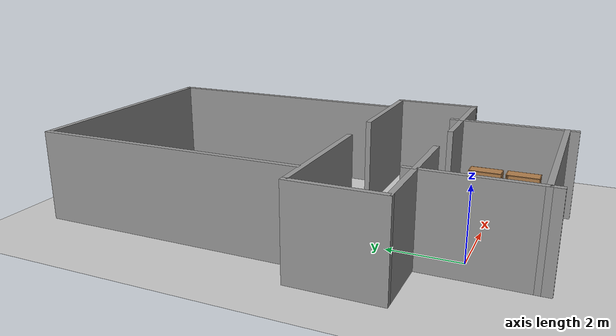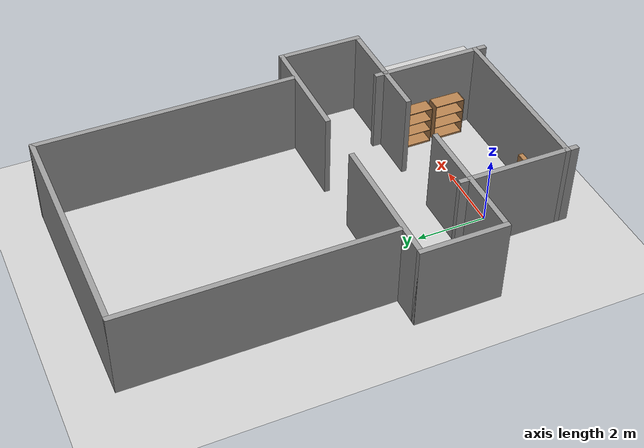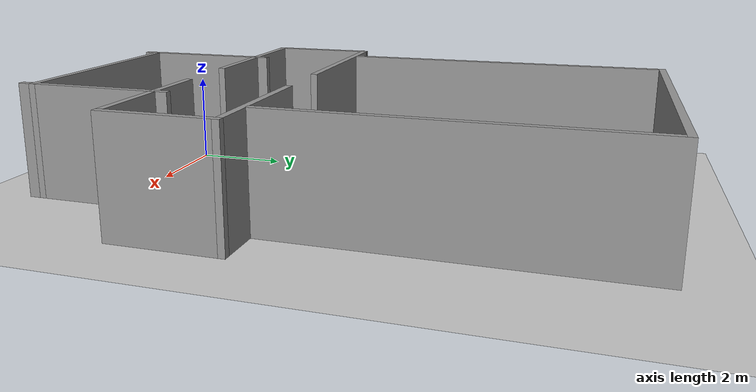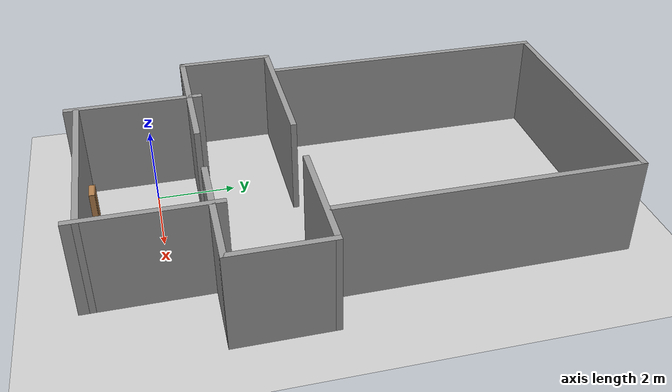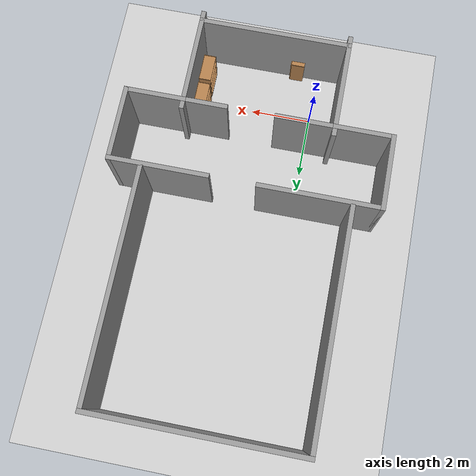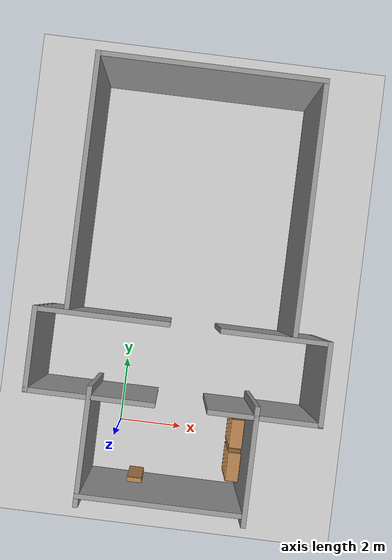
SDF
<sdf version="1.7">
 <world name="default">
  <light name="sun" type="directional">
   <pose>0 0 10 0 -0 0</pose>
   <diffuse>0.8 0.8 0.8 1</diffuse>
   <specular>0.2 0.2 0.2 1</specular>
   <attenuation>
    <range>1000</range>
    <constant>0.9</constant>
    <linear>0.01</linear>
    <quadratic>0.001</quadratic>
   </attenuation>
   <direction>-0.5 0.1 -0.9</direction>
   <spot><inner_angle>0</inner_angle><outer_angle>0</outer_angle><falloff>0</falloff></spot>
  </light>
  <model name="ground_plane">
   <static>1</static>
   <link name="link">
    <collision name="collision">
     <geometry><plane><normal>0 0 1</normal><size>100 100</size></plane></geometry>
     <surface><friction><ode><mu>100</mu><mu2>50</mu2></ode></friction></surface>
    </collision>
    <visual name="visual">
     <cast_shadows>0</cast_shadows>
     <geometry><plane><normal>0 0 1</normal><size>100 100</size></plane></geometry>
     <material>
      <script><uri>file://media/materials/scripts/gazebo.material</uri><name>Gazebo/Grey</name></script>
     </material>
    </visual>
   </link>
  </model>
  <gravity>0 0 -9.8</gravity>
  <magnetic_field>6e-06 2.3e-05 -4.2e-05</magnetic_field>
  <atmosphere type="adiabatic"/>
  <physics type="ode">
   <max_step_size>0.0005</max_step_size>
   <real_time_factor>1</real_time_factor>
   <real_time_update_rate>1000</real_time_update_rate>
  </physics>
  <scene><ambient>0.4 0.4 0.4 1</ambient><background>0.7 0.7 0.7 1</background><shadows>1</shadows></scene>
  <spherical_coordinates>
   <surface_model>EARTH_WGS84</surface_model>
   <latitude_deg>0</latitude_deg>
   <longitude_deg>0</longitude_deg>
   <elevation>0</elevation>
   <heading_deg>0</heading_deg>
  </spherical_coordinates>
  <model name="conference_room">
   <pose>1.62226 4.60417 0 0 -0 0</pose>
   <link name="Wall_17">
    <collision name="Wall_17_Collision">
     <geometry><box><size>3.5 0.15 2.5</size></box></geometry>
     <pose>0 0 1.25 0 -0 0</pose>
    </collision>
    <visual name="Wall_17_Visual">
     <pose>0 0 1.25 0 -0 0</pose>
     <geometry><box><size>3.5 0.15 2.5</size></box></geometry>
     <material>
      <script><uri>file://media/materials/scripts/gazebo.material</uri><name>Gazebo/Grey</name></script>
      <ambient>1 1 1 1</ambient>
     </material>
     <meta><layer>0</layer></meta>
    </visual>
    <pose>2.4174 -4.91209 0 0 -0 -1.5708</pose>
   </link>
   <link name="Wall_19">
    <collision name="Wall_19_Collision">
     <geometry><box><size>5 0.15 2.5</size></box></geometry>
     <pose>0 0 1.25 0 -0 0</pose>
    </collision>
    <visual name="Wall_19_Visual">
     <pose>0 0 1.25 0 -0 0</pose>
     <geometry><box><size>5 0.15 2.5</size></box></geometry>
     <material>
      <script><uri>file://media/materials/scripts/gazebo.material</uri><name>Gazebo/Grey</name></script>
      <ambient>1 1 1 1</ambient>
     </material>
     <meta><layer>0</layer></meta>
    </visual>
    <pose>-0.007604 -6.33709 0 0 -0 3.14159</pose>
   </link>
   <link name="Wall_20">
    <collision name="Wall_20_Collision">
     <geometry><box><size>3.5 0.15 2.5</size></box></geometry>
     <pose>0 0 1.25 0 -0 0</pose>
    </collision>
    <visual name="Wall_20_Visual">
     <pose>0 0 1.25 0 -0 0</pose>
     <geometry><box><size>3.5 0.15 2.5</size></box></geometry>
     <material>
      <script><uri>file://media/materials/scripts/gazebo.material</uri><name>Gazebo/Grey</name></script>
      <ambient>1 1 1 1</ambient>
     </material>
     <meta><layer>0</layer></meta>
    </visual>
    <pose>-2.4326 -4.91209 0 0 -0 1.5708</pose>
   </link>
   <link name="Wall_21">
    <collision name="Wall_21_Collision">
     <geometry><box><size>2 0.15 2.5</size></box></geometry>
     <pose>0 0 1.25 0 -0 0</pose>
    </collision>
    <visual name="Wall_21_Visual">
     <pose>0 0 1.25 0 -0 0</pose>
     <geometry><box><size>2 0.15 2.5</size></box></geometry>
     <material>
      <script><uri>file://media/materials/scripts/gazebo.material</uri><name>Gazebo/Grey</name></script>
      <ambient>1 1 1 1</ambient>
     </material>
     <meta><layer>0</layer></meta>
    </visual>
    <pose>-1.5076 -3.48709 0 0 -0 0</pose>
   </link>
   <link name="Wall_23">
    <collision name="Wall_23_Collision">
     <geometry><box><size>1.5 0.15 2.5</size></box></geometry>
     <pose>0 0 1.25 0 -0 0</pose>
    </collision>
    <visual name="Wall_23_Visual">
     <pose>0 0 1.25 0 -0 0</pose>
     <geometry><box><size>1.5 0.15 2.5</size></box></geometry>
     <material>
      <script><uri>file://media/materials/scripts/gazebo.material</uri><name>Gazebo/Grey</name></script>
      <ambient>1 1 1 1</ambient>
     </material>
     <meta><layer>0</layer></meta>
    </visual>
    <pose>1.7424 -3.48709 0 0 -0 3.14159</pose>
   </link>
   <link name="Wall_25">
    <collision name="Wall_25_Collision">
     <geometry><box><size>2 0.15 2.5</size></box></geometry>
     <pose>0 0 1.25 0 -0 0</pose>
    </collision>
    <visual name="Wall_25_Visual">
     <pose>0 0 1.25 0 -0 0</pose>
     <geometry><box><size>2 0.15 2.5</size></box></geometry>
     <material>
      <script><uri>file://media/materials/scripts/gazebo.material</uri><name>Gazebo/Grey</name></script>
      <ambient>1 1 1 1</ambient>
     </material>
     <meta><layer>0</layer></meta>
    </visual>
    <pose>3.3424 -3.48709 0 0 -0 0</pose>
   </link>
   <link name="Wall_26">
    <collision name="Wall_26_Collision">
     <geometry><box><size>2.5 0.15 2.5</size></box></geometry>
     <pose>0 0 1.25 0 -0 0</pose>
    </collision>
    <visual name="Wall_26_Visual">
     <pose>0 0 1.25 0 -0 0</pose>
     <geometry><box><size>2.5 0.15 2.5</size></box></geometry>
     <material>
      <script><uri>file://media/materials/scripts/gazebo.material</uri><name>Gazebo/Grey</name></script>
      <ambient>1 1 1 1</ambient>
     </material>
     <meta><layer>0</layer></meta>
    </visual>
    <pose>4.2674 -2.31209 0 0 -0 1.5708</pose>
   </link>
   <link name="Wall_27">
    <collision name="Wall_27_Collision">
     <geometry><box><size>3.25 0.15 2.5</size></box></geometry>
     <pose>0 0 1.25 0 -0 0</pose>
    </collision>
    <visual name="Wall_27_Visual">
     <pose>0 0 1.25 0 -0 0</pose>
     <geometry><box><size>3.25 0.15 2.5</size></box></geometry>
     <material>
      <script><uri>file://media/materials/scripts/gazebo.material</uri><name>Gazebo/Grey</name></script>
      <ambient>1 1 1 1</ambient>
     </material>
     <meta><layer>0</layer></meta>
    </visual>
    <pose>2.7174 -1.13709 0 0 -0 3.14159</pose>
   </link>
   <link name="Wall_29">
    <collision name="Wall_29_Collision">
     <geometry><box><size>1.96958 0.15 2.5</size></box></geometry>
     <pose>0 0 1.25 0 -0 0</pose>
    </collision>
    <visual name="Wall_29_Visual">
     <pose>0 0 1.25 0 -0 0</pose>
     <geometry><box><size>1.96958 0.15 2.5</size></box></geometry>
     <material>
      <script><uri>file://media/materials/scripts/gazebo.material</uri><name>Gazebo/Grey</name></script>
      <ambient>1 1 1 1</ambient>
     </material>
     <meta><layer>0</layer></meta>
    </visual>
    <pose>-3.34239 -3.48709 0 0 -0 3.14159</pose>
   </link>
   <link name="Wall_30">
    <collision name="Wall_30_Collision">
     <geometry><box><size>2.5 0.15 2.5</size></box></geometry>
     <pose>0 0 1.25 0 -0 0</pose>
    </collision>
    <visual name="Wall_30_Visual">
     <pose>0 0 1.25 0 -0 0</pose>
     <geometry><box><size>2.5 0.15 2.5</size></box></geometry>
     <material>
      <script><uri>file://media/materials/scripts/gazebo.material</uri><name>Gazebo/Grey</name></script>
      <ambient>1 1 1 1</ambient>
     </material>
     <meta><layer>0</layer></meta>
    </visual>
    <pose>-4.2674 -2.31209 0 0 -0 1.5708</pose>
   </link>
   <link name="Wall_31">
    <collision name="Wall_31_Collision">
     <geometry><box><size>3.96958 0.15 2.5</size></box></geometry>
     <pose>0 0 1.25 0 -0 0</pose>
    </collision>
    <visual name="Wall_31_Visual">
     <pose>0 0 1.25 0 -0 0</pose>
     <geometry><box><size>3.96958 0.15 2.5</size></box></geometry>
     <material>
      <script><uri>file://media/materials/scripts/gazebo.material</uri><name>Gazebo/Grey</name></script>
      <ambient>1 1 1 1</ambient>
     </material>
     <meta><layer>0</layer></meta>
    </visual>
    <pose>-2.34239 -1.13709 0 0 -0 0</pose>
   </link>
   <link name="Wall_39">
    <collision name="Wall_39_Collision">
     <geometry><box><size>7.5 0.15 2.5</size></box></geometry>
     <pose>0 0 1.25 0 -0 0</pose>
    </collision>
    <visual name="Wall_39_Visual">
     <pose>0 0 1.25 0 -0 0</pose>
     <geometry><box><size>7.5 0.15 2.5</size></box></geometry>
     <material>
      <script><uri>file://media/materials/scripts/gazebo.material</uri><name>Gazebo/Grey</name></script>
      <ambient>1 1 1 1</ambient>
     </material>
     <meta><layer>0</layer></meta>
    </visual>
    <pose>-3.36191 2.66209 0 0 -0 1.5708</pose>
   </link>
   <link name="Wall_40">
    <collision name="Wall_40_Collision">
     <geometry><box><size>6.75 0.15 2.5</size></box></geometry>
     <pose>0 0 1.25 0 -0 0</pose>
    </collision>
    <visual name="Wall_40_Visual">
     <pose>0 0 1.25 0 -0 0</pose>
     <geometry><box><size>6.75 0.15 2.5</size></box></geometry>
     <material>
      <script><uri>file://media/materials/scripts/gazebo.material</uri><name>Gazebo/Grey</name></script>
      <ambient>1 1 1 1</ambient>
     </material>
     <meta><layer>0</layer></meta>
    </visual>
    <pose>-0.061912 6.33709 0 0 -0 0</pose>
   </link>
   <link name="Wall_41">
    <collision name="Wall_41_Collision">
     <geometry><box><size>7.5 0.15 2.5</size></box></geometry>
     <pose>0 0 1.25 0 -0 0</pose>
    </collision>
    <visual name="Wall_41_Visual">
     <pose>0 0 1.25 0 -0 0</pose>
     <geometry><box><size>7.5 0.15 2.5</size></box></geometry>
     <material>
      <script><uri>file://media/materials/scripts/gazebo.material</uri><name>Gazebo/Grey</name></script>
      <ambient>1 1 1 1</ambient>
     </material>
     <meta><layer>0</layer></meta>
    </visual>
    <pose>3.23809 2.66209 0 0 -0 -1.5708</pose>
   </link>
   <static>1</static>
  </model>
  <model name="bookshelf">
   <static>1</static>
   <link name="link">
    <inertial><mass>1</mass></inertial>
    <collision name="back">
     <pose>0 0.005 0.6 0 -0 0</pose>
     <geometry><box><size>0.9 0.01 1.2</size></box></geometry>
    </collision>
    <visual name="visual1">
     <pose>0 0.005 0.6 0 -0 0</pose>
     <geometry><box><size>0.9 0.01 1.2</size></box></geometry>
     <material>
      <script><uri>file://media/materials/scripts/gazebo.material</uri><name>Gazebo/Wood</name></script>
     </material>
    </visual>
    <collision name="left_side">
     <pose>0.45 -0.195 0.6 0 -0 0</pose>
     <geometry><box><size>0.02 0.4 1.2</size></box></geometry>
    </collision>
    <visual name="visual2">
     <pose>0.45 -0.195 0.6 0 -0 0</pose>
     <geometry><box><size>0.02 0.4 1.2</size></box></geometry>
     <material>
      <script><uri>file://media/materials/scripts/gazebo.material</uri><name>Gazebo/Wood</name></script>
     </material>
    </visual>
    <collision name="right_side">
     <pose>-0.45 -0.195 0.6 0 -0 0</pose>
     <geometry><box><size>0.02 0.4 1.2</size></box></geometry>
    </collision>
    <visual name="visual3">
     <pose>-0.45 -0.195 0.6 0 -0 0</pose>
     <geometry><box><size>0.02 0.4 1.2</size></box></geometry>
     <material>
      <script><uri>file://media/materials/scripts/gazebo.material</uri><name>Gazebo/Wood</name></script>
     </material>
    </visual>
    <collision name="bottom">
     <pose>0 -0.195 0.03 0 -0 0</pose>
     <geometry><box><size>0.88 0.4 0.06</size></box></geometry>
    </collision>
    <visual name="visual4">
     <pose>0 -0.195 0.03 0 -0 0</pose>
     <geometry><box><size>0.88 0.4 0.06</size></box></geometry>
     <material>
      <script><uri>file://media/materials/scripts/gazebo.material</uri><name>Gazebo/Wood</name></script>
     </material>
    </visual>
    <collision name="top">
     <pose>0 -0.195 1.19 0 -0 0</pose>
     <geometry><box><size>0.88 0.4 0.02</size></box></geometry>
    </collision>
    <visual name="visual5">
     <pose>0 -0.195 1.19 0 -0 0</pose>
     <geometry><box><size>0.88 0.4 0.02</size></box></geometry>
     <material>
      <script><uri>file://media/materials/scripts/gazebo.material</uri><name>Gazebo/Wood</name></script>
     </material>
    </visual>
    <collision name="low_shelf">
     <pose>0 -0.195 0.43 0 -0 0</pose>
     <geometry><box><size>0.88 0.4 0.02</size></box></geometry>
    </collision>
    <visual name="visual6">
     <pose>0 -0.195 0.43 0 -0 0</pose>
     <geometry><box><size>0.88 0.4 0.02</size></box></geometry>
     <material>
      <script><uri>file://media/materials/scripts/gazebo.material</uri><name>Gazebo/Wood</name></script>
     </material>
    </visual>
    <collision name="high_shelf">
     <pose>0 -0.195 0.8 0 -0 0</pose>
     <geometry><box><size>0.88 0.4 0.02</size></box></geometry>
    </collision>
    <visual name="visual7">
     <pose>0 -0.195 0.8 0 -0 0</pose>
     <geometry><box><size>0.88 0.4 0.02</size></box></geometry>
     <material>
      <script><uri>file://media/materials/scripts/gazebo.material</uri><name>Gazebo/Wood</name></script>
     </material>
    </visual>
   </link>
   <pose>3.91621 -0.759662 0 0 0 -1.57</pose>
  </model>
  <model name="cabinet">
   <static>1</static>
   <link name="cabinet_bottom_plate">
    <inertial>
     <pose>0 0 -1 0 -0 0</pose>
     <inertia><ixx>2.05</ixx><ixy>0</ixy><ixz>0</ixz><iyy>2.05</iyy><iyz>0</iyz><izz>2.05</izz></inertia>
     <mass>25</mass>
    </inertial>
    <collision name="cabinet_bottom_plate_geom">
     <pose>0 0 0.01 0 -0 0</pose>
     <geometry><box><size>0.45 0.45 0.02</size></box></geometry>
    </collision>
    <visual name="cabinet_bottom_plate_geom_visual">
     <pose>0 0 0.01 0 -0 0</pose>
     <geometry><box><size>0.45 0.45 0.02</size></box></geometry>
     <material>
      <script><uri>file://media/materials/scripts/gazebo.material</uri><name>Gazebo/Wood</name></script>
     </material>
    </visual>
    <collision name="cabinet_bottom_plate_geom_cabinet_back_plate">
     <pose>0.235 0 0.51 0 -0 0</pose>
     <geometry><box><size>0.02 0.45 1.02</size></box></geometry>
    </collision>
    <visual name="cabinet_bottom_plate_geom_cabinet_back_plate_visual">
     <pose>0.235 0 0.51 0 -0 0</pose>
     <geometry><box><size>0.02 0.45 1.02</size></box></geometry>
     <material>
      <script><uri>file://media/materials/scripts/gazebo.material</uri><name>Gazebo/Wood</name></script>
     </material>
    </visual>
    <collision name="cabinet_bottom_plate_geom_cabinet_left_plate">
     <pose>0 0.235 0.51 0 -0 0</pose>
     <geometry><box><size>0.45 0.02 1.02</size></box></geometry>
    </collision>
    <visual name="cabinet_bottom_plate_geom_cabinet_left_plate_visual">
     <pose>0 0.235 0.51 0 -0 0</pose>
     <geometry><box><size>0.45 0.02 1.02</size></box></geometry>
     <material>
      <script><uri>file://media/materials/scripts/gazebo.material</uri><name>Gazebo/Wood</name></script>
     </material>
    </visual>
    <collision name="cabinet_bottom_plate_geom_cabinet_middle_plate">
     <pose>0 0 0.51 0 -0 0</pose>
     <geometry><box><size>0.45 0.45 0.02</size></box></geometry>
    </collision>
    <visual name="cabinet_bottom_plate_geom_cabinet_middle_plate_visual">
     <pose>0 0 0.51 0 -0 0</pose>
     <geometry><box><size>0.45 0.45 0.02</size></box></geometry>
     <material>
      <script><uri>file://media/materials/scripts/gazebo.material</uri><name>Gazebo/Wood</name></script>
     </material>
    </visual>
    <collision name="cabinet_bottom_plate_geom_cabinet_right_plate">
     <pose>0 -0.235 0.51 0 -0 0</pose>
     <geometry><box><size>0.45 0.02 1.02</size></box></geometry>
    </collision>
    <visual name="cabinet_bottom_plate_geom_cabinet_right_plate_visual">
     <pose>0 -0.235 0.51 0 -0 0</pose>
     <geometry><box><size>0.45 0.02 1.02</size></box></geometry>
     <material>
      <script><uri>file://media/materials/scripts/gazebo.material</uri><name>Gazebo/Wood</name></script>
     </material>
    </visual>
    <collision name="cabinet_bottom_plate_geom_cabinet_top_plate">
     <pose>0 0 1.01 0 -0 0</pose>
     <geometry><box><size>0.45 0.45 0.02</size></box></geometry>
    </collision>
    <visual name="cabinet_bottom_plate_geom_cabinet_top_plate_visual">
     <pose>0 0 1.01 0 -0 0</pose>
     <geometry><box><size>0.45 0.45 0.02</size></box></geometry>
     <material>
      <script><uri>file://media/materials/scripts/gazebo.material</uri><name>Gazebo/Wood</name></script>
     </material>
    </visual>
   </link>
   <pose>0.718233 -1.7445 0 0 -0 0</pose>
  </model>
  <model name="bookshelf_clone">
   <static>1</static>
   <link name="link">
    <inertial><mass>1</mass></inertial>
    <collision name="back">
     <pose>0 0.005 0.6 0 -0 0</pose>
     <geometry><box><size>0.9 0.01 1.2</size></box></geometry>
    </collision>
    <visual name="visual1">
     <pose>0 0.005 0.6 0 -0 0</pose>
     <geometry><box><size>0.9 0.01 1.2</size></box></geometry>
     <material>
      <script><uri>file://media/materials/scripts/gazebo.material</uri><name>Gazebo/Wood</name></script>
     </material>
    </visual>
    <collision name="left_side">
     <pose>0.45 -0.195 0.6 0 -0 0</pose>
     <geometry><box><size>0.02 0.4 1.2</size></box></geometry>
    </collision>
    <visual name="visual2">
     <pose>0.45 -0.195 0.6 0 -0 0</pose>
     <geometry><box><size>0.02 0.4 1.2</size></box></geometry>
     <material>
      <script><uri>file://media/materials/scripts/gazebo.material</uri><name>Gazebo/Wood</name></script>
     </material>
    </visual>
    <collision name="right_side">
     <pose>-0.45 -0.195 0.6 0 -0 0</pose>
     <geometry><box><size>0.02 0.4 1.2</size></box></geometry>
    </collision>
    <visual name="visual3">
     <pose>-0.45 -0.195 0.6 0 -0 0</pose>
     <geometry><box><size>0.02 0.4 1.2</size></box></geometry>
     <material>
      <script><uri>file://media/materials/scripts/gazebo.material</uri><name>Gazebo/Wood</name></script>
     </material>
    </visual>
    <collision name="bottom">
     <pose>0 -0.195 0.03 0 -0 0</pose>
     <geometry><box><size>0.88 0.4 0.06</size></box></geometry>
    </collision>
    <visual name="visual4">
     <pose>0 -0.195 0.03 0 -0 0</pose>
     <geometry><box><size>0.88 0.4 0.06</size></box></geometry>
     <material>
      <script><uri>file://media/materials/scripts/gazebo.material</uri><name>Gazebo/Wood</name></script>
     </material>
    </visual>
    <collision name="top">
     <pose>0 -0.195 1.19 0 -0 0</pose>
     <geometry><box><size>0.88 0.4 0.02</size></box></geometry>
    </collision>
    <visual name="visual5">
     <pose>0 -0.195 1.19 0 -0 0</pose>
     <geometry><box><size>0.88 0.4 0.02</size></box></geometry>
     <material>
      <script><uri>file://media/materials/scripts/gazebo.material</uri><name>Gazebo/Wood</name></script>
     </material>
    </visual>
    <collision name="low_shelf">
     <pose>0 -0.195 0.43 0 -0 0</pose>
     <geometry><box><size>0.88 0.4 0.02</size></box></geometry>
    </collision>
    <visual name="visual6">
     <pose>0 -0.195 0.43 0 -0 0</pose>
     <geometry><box><size>0.88 0.4 0.02</size></box></geometry>
     <material>
      <script><uri>file://media/materials/scripts/gazebo.material</uri><name>Gazebo/Wood</name></script>
     </material>
    </visual>
    <collision name="high_shelf">
     <pose>0 -0.195 0.8 0 -0 0</pose>
     <geometry><box><size>0.88 0.4 0.02</size></box></geometry>
    </collision>
    <visual name="visual7">
     <pose>0 -0.195 0.8 0 -0 0</pose>
     <geometry><box><size>0.88 0.4 0.02</size></box></geometry>
     <material>
      <script><uri>file://media/materials/scripts/gazebo.material</uri><name>Gazebo/Wood</name></script>
     </material>
    </visual>
   </link>
   <pose>3.90666 0.269195 0 0 0 -1.57</pose>
  </model>
 </world>
</sdf>
